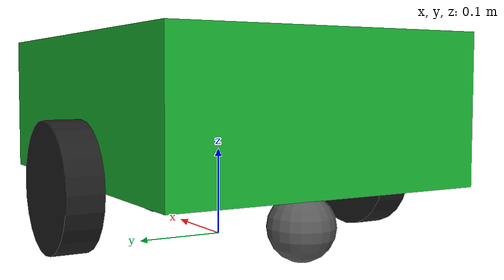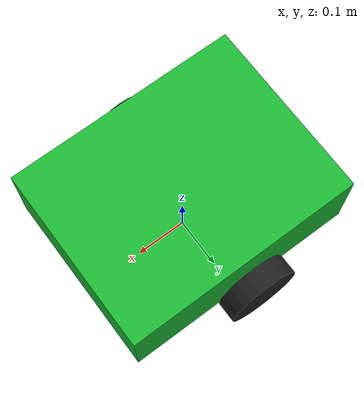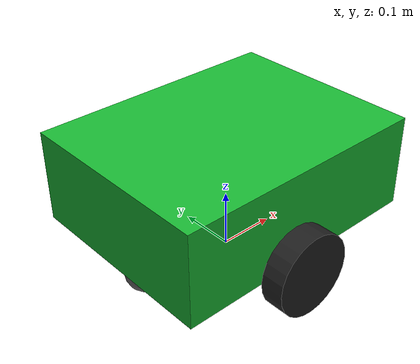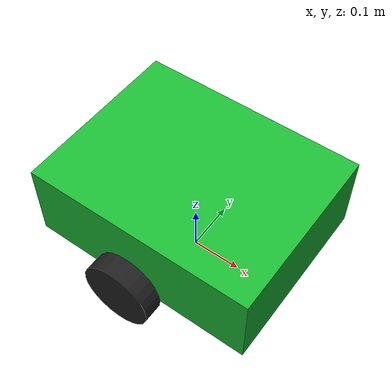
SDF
<?xml version="1.0" ?>
<sdf version="1.10">
<model name="traffic_robot_b">

  <!-- ── chassis ──────────────────────────────────────────────────── -->
  <link name="base_link">
    <pose>0 0 0.15 0 0 0</pose>
    <inertial>
      <mass>6.0</mass>
      <inertia>
        <ixx>0.074</ixx><iyy>0.114</iyy><izz>0.163</izz>
        <ixy>0</ixy><ixz>0</ixz><iyz>0</iyz>
      </inertia>
    </inertial>
    <collision name="col">
      <geometry><box><size>0.45 0.35 0.16</size></box></geometry>
    </collision>
    <visual name="vis">
      <geometry><box><size>0.45 0.35 0.16</size></box></geometry>
      <material>
        <ambient>0.10 0.72 0.20 1</ambient>
        <diffuse>0.10 0.72 0.20 1</diffuse>
      </material>
    </visual>
  </link>

  <!-- ── beacon tower (LIDAR target for other robots) ─────────────── -->
  <!-- Spans z=0.23 to z=0.47 so horizontal LIDAR scans at z=0.24
       hit this beacon. Gazebo ignores self-model hits. -->
  <link name="beacon_link">
    <pose>0 0 0.35 0 0 0</pose>
    <inertial>
      <mass>0.2</mass>
      <inertia>
        <ixx>0.00113</ixx><iyy>0.00113</iyy><izz>0.00033</izz>
        <ixy>0</ixy><ixz>0</ixz><iyz>0</iyz>
      </inertia>
    </inertial>
    <collision name="col">
      <geometry><box><size>0.10 0.10 0.24</size></box></geometry>
    </collision>
  </link>

  <joint name="beacon_joint" type="fixed">
    <parent>base_link</parent><child>beacon_link</child>
  </joint>

  <!-- ── left wheel ───────────────────────────────────────────────── -->
  <link name="left_wheel">
    <pose>-0.02 0.195 0.07 1.5707963 0 0</pose>
    <inertial>
      <mass>0.5</mass>
      <inertia>
        <ixx>0.00068</ixx><iyy>0.00068</iyy><izz>0.00123</izz>
        <ixy>0</ixy><ixz>0</ixz><iyz>0</iyz>
      </inertia>
    </inertial>
    <collision name="col">
      <geometry><cylinder><radius>0.07</radius><length>0.04</length></cylinder></geometry>
      <surface><friction><ode><mu>1.0</mu><mu2>0.5</mu2></ode></friction></surface>
    </collision>
    <visual name="vis">
      <geometry><cylinder><radius>0.07</radius><length>0.04</length></cylinder></geometry>
      <material><ambient>0.12 0.12 0.12 1</ambient><diffuse>0.12 0.12 0.12 1</diffuse></material>
    </visual>
  </link>

  <joint name="left_wheel_joint" type="revolute">
    <parent>base_link</parent><child>left_wheel</child>
    <axis>
      <xyz expressed_in="__model__">0 1 0</xyz>
      <limit><lower>-1e308</lower><upper>1e308</upper></limit>
    </axis>
  </joint>

  <!-- ── right wheel ──────────────────────────────────────────────── -->
  <link name="right_wheel">
    <pose>-0.02 -0.195 0.07 1.5707963 0 0</pose>
    <inertial>
      <mass>0.5</mass>
      <inertia>
        <ixx>0.00068</ixx><iyy>0.00068</iyy><izz>0.00123</izz>
        <ixy>0</ixy><ixz>0</ixz><iyz>0</iyz>
      </inertia>
    </inertial>
    <collision name="col">
      <geometry><cylinder><radius>0.07</radius><length>0.04</length></cylinder></geometry>
      <surface><friction><ode><mu>1.0</mu><mu2>0.5</mu2></ode></friction></surface>
    </collision>
    <visual name="vis">
      <geometry><cylinder><radius>0.07</radius><length>0.04</length></cylinder></geometry>
      <material><ambient>0.12 0.12 0.12 1</ambient><diffuse>0.12 0.12 0.12 1</diffuse></material>
    </visual>
  </link>

  <joint name="right_wheel_joint" type="revolute">
    <parent>base_link</parent><child>right_wheel</child>
    <axis>
      <xyz expressed_in="__model__">0 1 0</xyz>
      <limit><lower>-1e308</lower><upper>1e308</upper></limit>
    </axis>
  </joint>

  <!-- ── front caster ─────────────────────────────────────────────── -->
  <link name="front_caster">
    <pose>0.17 0 0.035 0 0 0</pose>
    <inertial>
      <mass>0.1</mass>
      <inertia><ixx>0.0001</ixx><iyy>0.0001</iyy><izz>0.0001</izz>
               <ixy>0</ixy><ixz>0</ixz><iyz>0</iyz></inertia>
    </inertial>
    <collision name="col">
      <geometry><sphere><radius>0.035</radius></sphere></geometry>
      <surface><friction><ode><mu>0</mu><mu2>0</mu2></ode></friction></surface>
    </collision>
    <visual name="vis">
      <geometry><sphere><radius>0.035</radius></sphere></geometry>
      <material><ambient>0.35 0.35 0.35 1</ambient><diffuse>0.35 0.35 0.35 1</diffuse></material>
    </visual>
  </link>

  <joint name="front_caster_joint" type="ball">
    <parent>base_link</parent><child>front_caster</child>
  </joint>

  <!-- ── rear caster ──────────────────────────────────────────────── -->
  <link name="rear_caster">
    <pose>-0.17 0 0.035 0 0 0</pose>
    <inertial>
      <mass>0.1</mass>
      <inertia><ixx>0.0001</ixx><iyy>0.0001</iyy><izz>0.0001</izz>
               <ixy>0</ixy><ixz>0</ixz><iyz>0</iyz></inertia>
    </inertial>
    <collision name="col">
      <geometry><sphere><radius>0.035</radius></sphere></geometry>
      <surface><friction><ode><mu>0</mu><mu2>0</mu2></ode></friction></surface>
    </collision>
    <visual name="vis">
      <geometry><sphere><radius>0.035</radius></sphere></geometry>
      <material><ambient>0.35 0.35 0.35 1</ambient><diffuse>0.35 0.35 0.35 1</diffuse></material>
    </visual>
  </link>

  <joint name="rear_caster_joint" type="ball">
    <parent>base_link</parent><child>rear_caster</child>
  </joint>

  <!-- ── LIDAR (scans at z=0.24, inside other robots' beacon band) ── -->
  <link name="lidar_link">
    <pose>0 0 0.24 0 0 0</pose>
    <sensor name="lidar" type="gpu_lidar">
      <topic>/traffic_robot_2/scan</topic>
      <gz_frame_id>traffic_robot_2/lidar_link</gz_frame_id>
      <update_rate>10</update_rate>
      <lidar>
        <scan>
          <horizontal>
            <samples>180</samples><resolution>1</resolution>
            <min_angle>-3.14159</min_angle><max_angle>3.14159</max_angle>
          </horizontal>
        </scan>
        <range><min>0.15</min><max>8.0</max><resolution>0.02</resolution></range>
      </lidar>
      <always_on>true</always_on><visualize>false</visualize>
    </sensor>
  </link>

  <joint name="lidar_joint" type="fixed">
    <parent>base_link</parent><child>lidar_link</child>
  </joint>

  <!-- ── differential drive ───────────────────────────────────────── -->
  <plugin filename="gz-sim-diff-drive-system"
          name="gz::sim::systems::DiffDrive">
    <left_joint>left_wheel_joint</left_joint>
    <right_joint>right_wheel_joint</right_joint>
    <wheel_separation>0.39</wheel_separation>
    <wheel_radius>0.07</wheel_radius>
    <topic>/traffic_robot_2/cmd_vel</topic>
    <odom_topic>/traffic_robot_2/odom</odom_topic>
    <tf_topic>/traffic_robot_2/tf</tf_topic>
    <frame_id>traffic_robot_2/odom</frame_id>
    <child_frame_id>traffic_robot_2/base_link</child_frame_id>
    <max_linear_acceleration>1.0</max_linear_acceleration>
    <max_angular_acceleration>2.0</max_angular_acceleration>
  </plugin>

</model>
</sdf>
